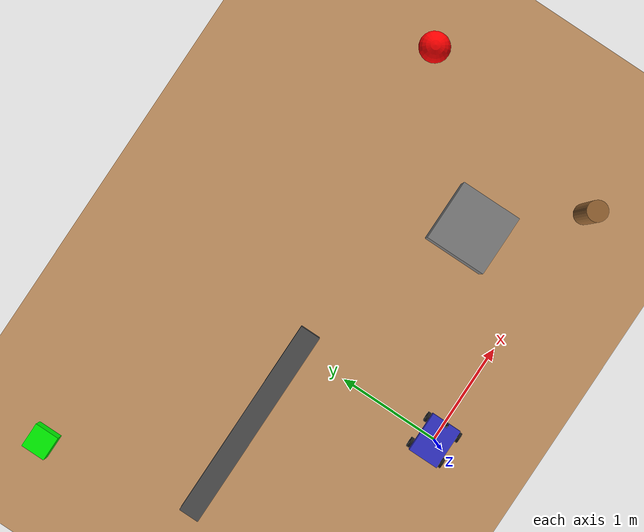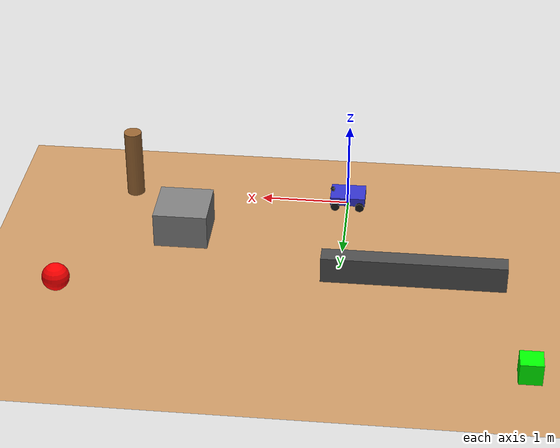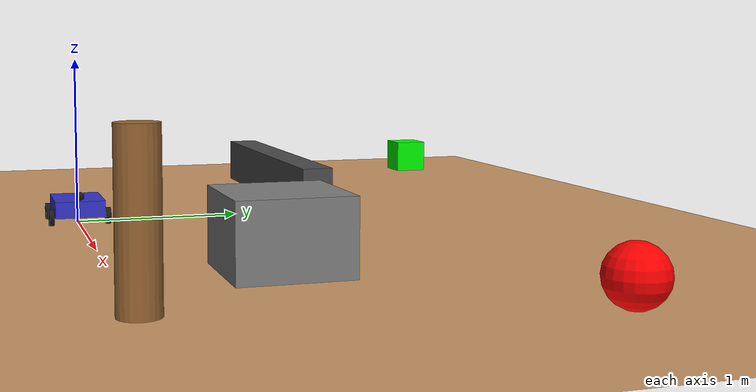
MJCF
<mujoco model="omnivla_navigation_mj">
    <compiler angle="degree" coordinate="local" inertiafromgeom="true"/>

    <option integrator="RK4" timestep="0.002"/>

    <default>
        <geom friction="2.0 0.5 0.5" rgba="0.8 0.6 0.4 1"/>
        <joint damping="0.8" armature="0.01"/>
        <velocity ctrlrange="-20 20" ctrllimited="true" kv="8"/>
    </default>

    <asset>
        <texture name="grid" type="2d" builtin="checker" rgb1=".1 .2 .3" rgb2=".2 .3 .4" width="300" height="300" mark="edge" markrgb=".2 .3 .4"/>
        <material name="grid" texture="grid" texrepeat="2 2" texuniform="true"/>
    </asset>

    <worldbody>
        <light directional="true" diffuse=".8 .8 .8" specular=".2 .2 .2" pos="0 0 5" dir="0 0 -1"/>
        <geom name="floor" type="plane" size="10 10 .1" material="grid" friction="2 0.5 0.5"/>

        <!-- Target: Red Ball -->
        <body name="red_ball" pos="3.0 2.0 0.15">
            <geom type="sphere" size="0.15" rgba="1 0 0 1" friction="1 0.5 0.5"/>
        </body>

        <!-- Target: Green Cube -->
        <body name="green_cube" pos="-2.0 3.0 0.12">
            <geom type="box" size="0.12 0.12 0.12" rgba="0 1 0 1" friction="1 0.5 0.5"/>
        </body>

        <!-- Static Obstacle: Grey Stone -->
        <body name="obstacle_stone" pos="1.8 0.8 0.2">
            <geom type="box" size="0.3 0.3 0.2" rgba="0.5 0.5 0.5 1"/>
        </body>

        <!-- Static Obstacle: Tall Pillar -->
        <body name="obstacle_pillar" pos="2.5 0.0 0.4">
            <geom type="cylinder" size="0.1 0.4" rgba="0.6 0.4 0.2 1"/>
        </body>

        <!-- Static Obstacle: Dividing Wall -->
        <body name="obstacle_wall" pos="-0.8 1.5 0.15">
            <geom type="box" size="1.0 0.1 0.15" rgba="0.3 0.3 0.3 1"/>
        </body>

        <!-- Robot Chassis -->
        <body name="robot" pos="0 0 0.1">
            <joint type="free"/>
            <geom name="chassis" type="box" size="0.2 0.15 0.05" rgba="0.2 0.2 0.8 1"/>

            <!-- Camera (Look Forward +X, Up is +Z, Right is -Y) -->
            <camera name="robot_eye" pos="0.18 0 0.08" fovy="75" xyaxes="0 -1 0 0 0 1"/>
            <!-- Visual Camera Eye (Black Lens) -->
            <geom name="camera_lens" type="sphere" pos="0.18 0 0.08" size="0.025" rgba="0.1 0.1 0.1 1"/>
            <geom name="camera_mount" type="box" pos="0.17 0 0.08" size="0.01 0.02 0.02" rgba="0.5 0.5 0.5 1"/>

            <!-- Wheels -->
            <body name="front_left" pos="0.14 0.17 -0.05">
                <joint name="fl_joint" type="hinge" axis="0 1 0"/>
                <geom type="cylinder" size="0.05 0.015" euler="90 0 0" rgba="0.1 0.1 0.1 1"/>
            </body>
            <body name="front_right" pos="0.14 -0.17 -0.05">
                <joint name="fr_joint" type="hinge" axis="0 1 0"/>
                <geom type="cylinder" size="0.05 0.015" euler="90 0 0" rgba="0.1 0.1 0.1 1"/>
            </body>
            <body name="rear_left" pos="-0.14 0.17 -0.05">
                <joint name="rl_joint" type="hinge" axis="0 1 0"/>
                <geom type="cylinder" size="0.05 0.015" euler="90 0 0" rgba="0.1 0.1 0.1 1"/>
            </body>
            <body name="rear_right" pos="-0.14 -0.17 -0.05">
                <joint name="rr_joint" type="hinge" axis="0 1 0"/>
                <geom type="cylinder" size="0.05 0.015" euler="90 0 0" rgba="0.1 0.1 0.1 1"/>
            </body>
        </body >
    </worldbody>

    <actuator>
        <velocity name="drive_fl" joint="fl_joint"/>
        <velocity name="drive_fr" joint="fr_joint"/>
        <velocity name="drive_rl" joint="rl_joint"/>
        <velocity name="drive_rr" joint="rr_joint"/>
    </actuator>
</mujoco>
